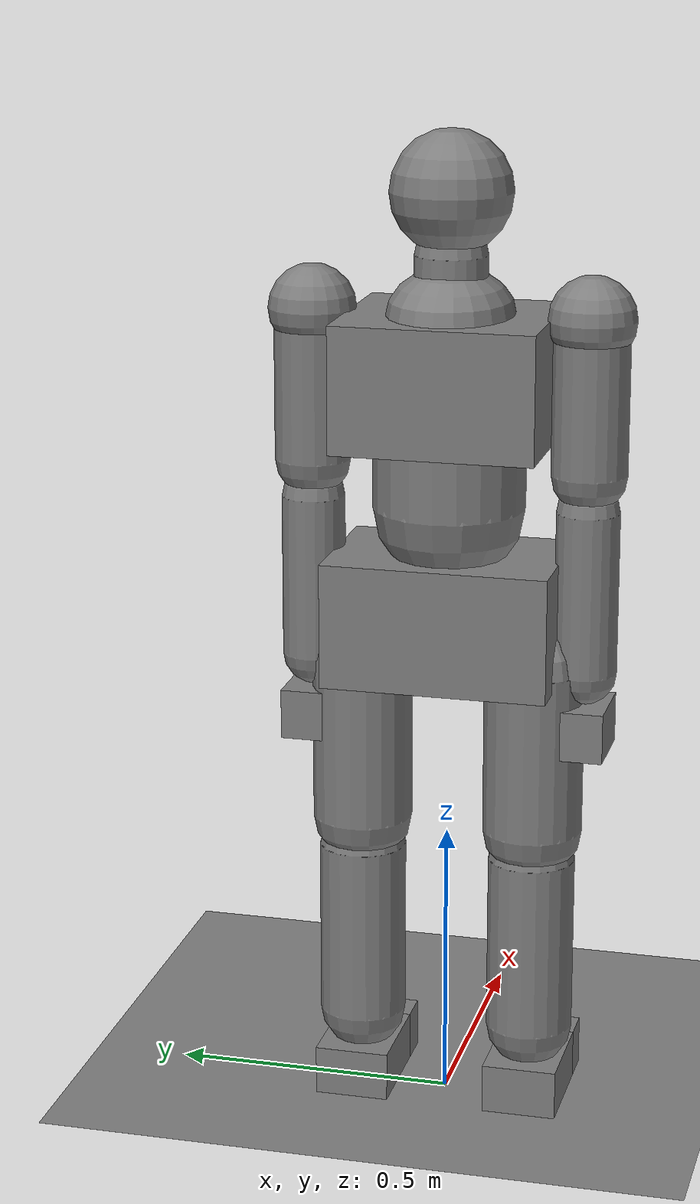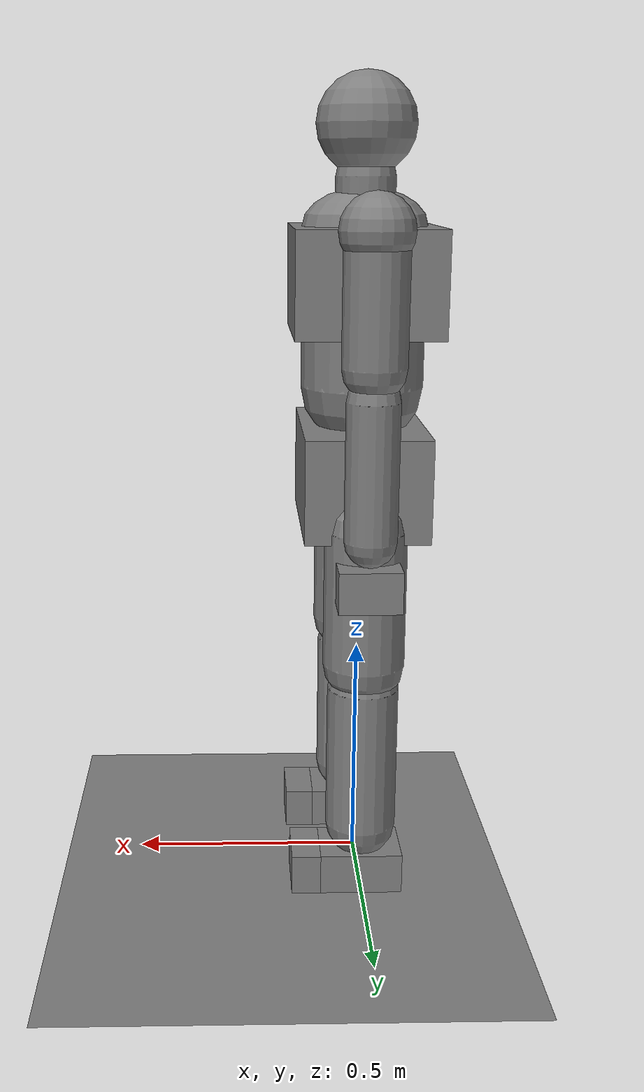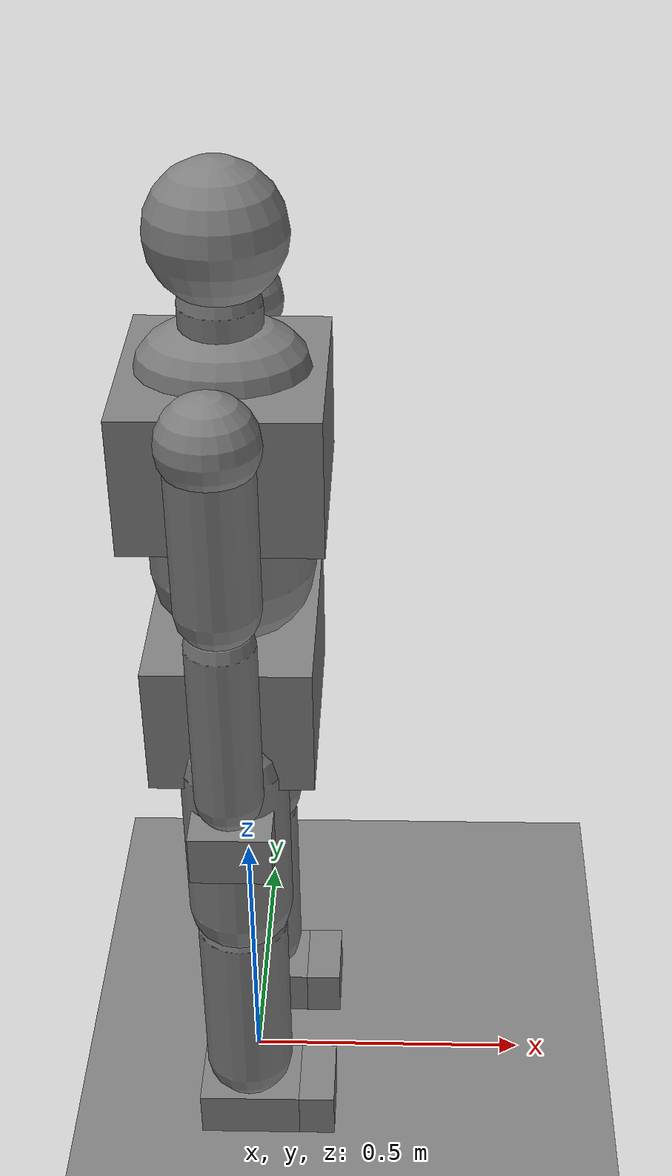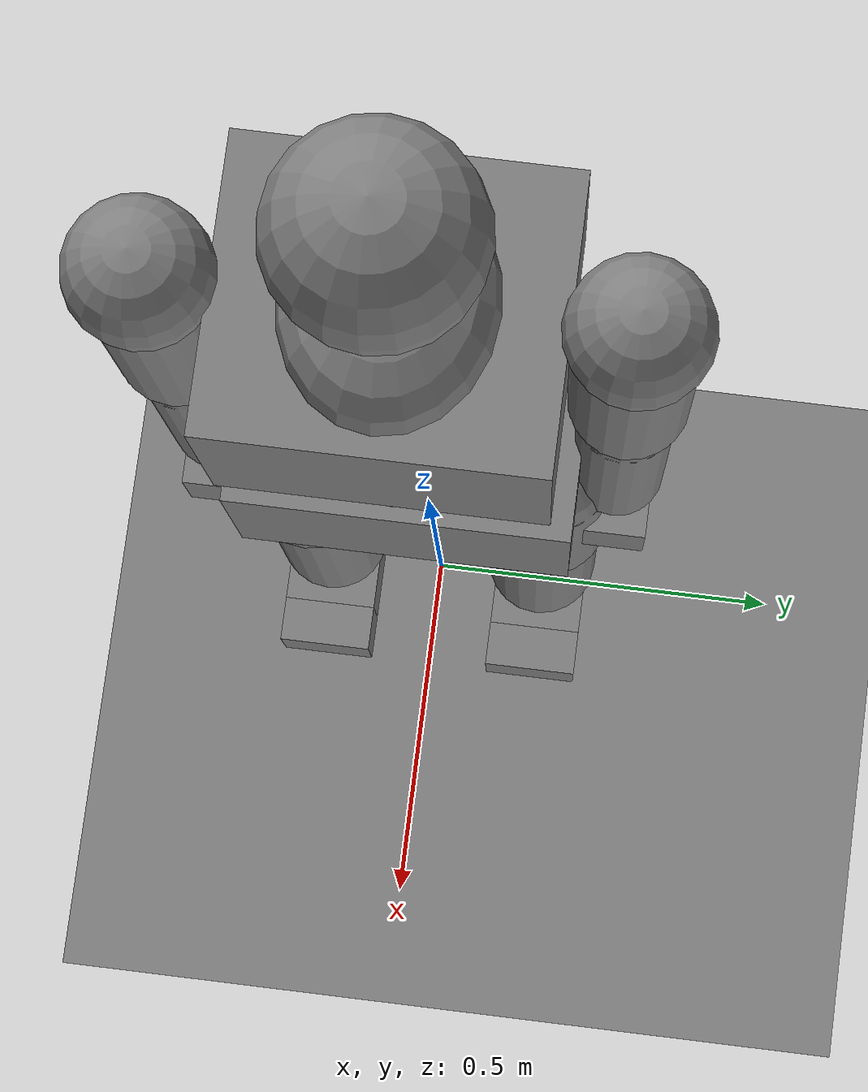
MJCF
<mujoco model="p4f_dummy">
  <compiler angle="radian" autolimits="true"/>
  <option timestep="0.004167" integrator="implicitfast"/>
  <worldbody>
    <geom name="floor" type="plane" size="60 60 0.1" pos="0 0 0"/>
      <body name="Pelvis" pos="0.000003 -0.000000 0.906287">
        <freejoint name="root"/>
        <geom name="g_Pelvis" type="box" size="0.1326 0.1989 0.1105" mass="12.1588"/>
        <body name="Spine" pos="-0.000024 0.000000 0.198952">
          <joint name="Spine_rx" type="hinge" axis="0 -1 0" pos="0.000020 -0.000000 -0.110346" range="-0.4000 1.0000" limited="true" armature="0.0200" stiffness="10.000" damping="0.500"/>
          <joint name="Spine_ry" type="hinge" axis="0 0 1" pos="0.000020 -0.000000 -0.110346" range="-0.5000 0.5000" limited="true" armature="0.0200" stiffness="10.000" damping="0.500"/>
          <joint name="Spine_rz" type="hinge" axis="-1 0 0" pos="0.000020 -0.000000 -0.110346" range="-0.5000 0.5000" limited="true" armature="0.0200" stiffness="10.000" damping="0.500"/>
          <geom name="g_Spine" type="capsule" size="0.1326 0.0579" pos="0 0 0.0524" mass="6.9479"/>
          <body name="Chest" pos="0.000063 -0.000000 0.221140">
            <joint name="Chest_rx" type="hinge" axis="0 -1 0" pos="-0.000042 0.000000 -0.143505" range="-0.5000 0.5000" limited="true" armature="0.0200" stiffness="10.000" damping="0.500"/>
            <joint name="Chest_ry" type="hinge" axis="0 0 1" pos="-0.000042 0.000000 -0.143505" range="-0.5000 0.5000" limited="true" armature="0.0200" stiffness="10.000" damping="0.500"/>
            <joint name="Chest_rz" type="hinge" axis="-1 0 0" pos="-0.000042 0.000000 -0.143505" range="-0.5000 0.5000" limited="true" armature="0.0200" stiffness="10.000" damping="0.500"/>
            <geom name="g_Yoke" type="ellipsoid" size="0.1331 0.1096 0.0796" pos="0 0 0.1106" mass="1.2"/>
            <geom name="g_Chest" type="box" size="0.1547 0.1768 0.1106" mass="11.6958"/>
            <geom name="g_Neck" type="capsule" size="0.0637 0.0504" pos="0 0 0.1610" mass="1.0000"/>
            <geom name="g_Deltoid_L" type="sphere" size="0.0763" pos="0 0.2432 0.1106" mass="0.35"/>
            <geom name="g_Deltoid_R" type="sphere" size="0.0763" pos="0 -0.2432 0.1106" mass="0.35"/>
            <body name="Head" pos="0.000005 -0.000000 0.317516">
              <joint name="Head_rx" type="hinge" axis="0 -1 0" pos="-0.000048 0.000000 -0.154557" range="-0.6000 0.6981" limited="true" stiffness="5.000" damping="0.600" solreflimit="0.008 1" solimplimit="0.95 0.999 0.001 0.5 2"/>
              <joint name="Head_ry" type="hinge" axis="0 0 1" pos="-0.000048 0.000000 -0.154557" range="-1.0000 1.0000" limited="true" stiffness="5.000" damping="0.600" solreflimit="0.008 1" solimplimit="0.95 0.999 0.001 0.5 2"/>
              <joint name="Head_rz" type="hinge" axis="-1 0 0" pos="-0.000048 0.000000 -0.154557" range="-0.7854 0.7854" limited="true" stiffness="5.000" damping="0.600" solreflimit="0.008 1" solimplimit="0.95 0.999 0.001 0.5 2"/>
              <geom name="g_Head" type="sphere" size="0.1061" mass="4.3424"/>
            </body>
            <body name="UpperArm_L" pos="-0.000386 -0.243157 -0.044376">
              <joint name="UpperArm_L_rx" type="hinge" axis="0 -1 0" pos="0.000344 -0.000000 0.154990" range="-1.0000 3.0000" limited="true" armature="0.0200" stiffness="4.500" damping="0.225"/>
              <joint name="UpperArm_L_ry" type="hinge" axis="0 0 1" pos="0.000344 -0.000000 0.154990" range="-1.5000 1.5000" limited="true" armature="0.0200" stiffness="4.500" damping="0.225"/>
              <joint name="UpperArm_L_rz" type="hinge" axis="-1 0 0" pos="0.000344 -0.000000 0.154990" range="-0.5000 2.5000" limited="true" armature="0.0200" stiffness="4.500" damping="0.225" springref="0.1396"/>
              <geom name="g_UpperArm_L" type="capsule" size="0.0663 0.1328" pos="0 0 0.0222" mass="2.1712"/>
              <body name="Forearm_L" pos="0.000380 -0.000038 -0.353675">
                <joint name="Forearm_L_rx" type="hinge" axis="0 -1 0" pos="-0.000037 -0.000044 0.177087" range="-0.1000 2.6000" limited="true" armature="0.0200" stiffness="3.000" damping="0.150"/>
                <geom name="g_Forearm_L" type="capsule" size="0.0553 0.1438" pos="0 0 0.0333" mass="1.5633"/>
                <body name="Hand_L" pos="0.000790 -0.000064 -0.210000">
                  <joint name="Hand_L_rx" type="hinge" axis="0 -1 0" pos="-0.000827 0.000020 0.066552" range="-1.0000 1.0000" limited="true" armature="0.0200" stiffness="1.930" damping="0.193"/>
                  <joint name="Hand_L_ry" type="hinge" axis="0 0 1" pos="-0.000827 0.000020 0.066552" range="-0.5000 0.5000" limited="true" armature="0.0200" stiffness="1.930" damping="0.193"/>
                  <joint name="Hand_L_rz" type="hinge" axis="-1 0 0" pos="-0.000827 0.000020 0.066552" range="-0.5000 0.5000" limited="true" armature="0.0200" stiffness="1.930" damping="0.193"/>
                  <geom name="g_Hand_L" type="box" size="0.0663 0.0442 0.0442" mass="0.4342"/>
                </body>
              </body>
            </body>
            <body name="UpperArm_R" pos="-0.000386 0.243157 -0.044376">
              <joint name="UpperArm_R_rx" type="hinge" axis="0 -1 0" pos="0.000344 -0.000000 0.154990" range="-1.0000 3.0000" limited="true" armature="0.0200" stiffness="4.500" damping="0.225"/>
              <joint name="UpperArm_R_ry" type="hinge" axis="0 0 1" pos="0.000344 -0.000000 0.154990" range="-1.5000 1.5000" limited="true" armature="0.0200" stiffness="4.500" damping="0.225"/>
              <joint name="UpperArm_R_rz" type="hinge" axis="-1 0 0" pos="0.000344 -0.000000 0.154990" range="-2.5000 0.5000" limited="true" armature="0.0200" stiffness="4.500" damping="0.225" springref="-0.1396"/>
              <geom name="g_UpperArm_R" type="capsule" size="0.0663 0.1328" pos="0 0 0.0222" mass="2.1712"/>
              <body name="Forearm_R" pos="0.000380 0.000038 -0.353675">
                <joint name="Forearm_R_rx" type="hinge" axis="0 -1 0" pos="-0.000037 0.000044 0.177087" range="-0.1000 2.6000" limited="true" armature="0.0200" stiffness="3.000" damping="0.150"/>
                <geom name="g_Forearm_R" type="capsule" size="0.0553 0.1438" pos="0 0 0.0333" mass="1.5633"/>
                <body name="Hand_R" pos="0.000790 0.000064 -0.210000">
                  <joint name="Hand_R_rx" type="hinge" axis="0 -1 0" pos="-0.000827 -0.000020 0.066552" range="-1.0000 1.0000" limited="true" armature="0.0200" stiffness="1.930" damping="0.193"/>
                  <joint name="Hand_R_ry" type="hinge" axis="0 0 1" pos="-0.000827 -0.000020 0.066552" range="-0.5000 0.5000" limited="true" armature="0.0200" stiffness="1.930" damping="0.193"/>
                  <joint name="Hand_R_rz" type="hinge" axis="-1 0 0" pos="-0.000827 -0.000020 0.066552" range="-0.5000 0.5000" limited="true" armature="0.0200" stiffness="1.930" damping="0.193"/>
                  <geom name="g_Hand_R" type="box" size="0.0663 0.0442 0.0442" mass="0.4342"/>
                </body>
              </body>
            </body>
          </body>
        </body>
        <body name="Thigh_L" pos="-0.000005 -0.154736 -0.265263">
          <joint name="Thigh_L_rx" type="hinge" axis="0 -1 0" pos="0.000002 -0.000000 0.177024" range="-0.5000 2.1000" limited="true" armature="0.0200" stiffness="10.000" damping="0.500"/>
          <joint name="Thigh_L_ry" type="hinge" axis="0 0 1" pos="0.000002 -0.000000 0.177024" range="-0.5000 0.5000" limited="true" armature="0.0200" stiffness="10.000" damping="0.500"/>
          <joint name="Thigh_L_rz" type="hinge" axis="-1 0 0" pos="0.000002 -0.000000 0.177024" range="-0.2000 0.8000" limited="true" armature="0.0200" stiffness="10.000" damping="0.500"/>
          <geom name="g_Thigh_L" type="capsule" size="0.0884 0.1493" pos="0 0 0.0277" mass="6.5136"/>
          <body name="Shin_L" pos="-0.000006 0.000000 -0.364736">
            <joint name="Shin_L_rx" type="hinge" axis="0 -1 0" pos="0.000008 0.000000 0.188077" range="-2.6000 0.1000" limited="true" armature="0.0200" stiffness="12.500" damping="0.625"/>
            <geom name="g_Shin_L" type="capsule" size="0.0774 0.1604" pos="0 0 0.0277" mass="3.9082"/>
            <body name="Foot_L" pos="0.033180 0.000000 -0.232078">
              <joint name="Foot_L_rx" type="hinge" axis="0 -1 0" pos="-0.033172 -0.000000 0.044366" range="-0.8000 0.6000" limited="true" armature="0.0200" stiffness="7.500" damping="0.375"/>
              <joint name="Foot_L_ry" type="hinge" axis="0 0 1" pos="-0.033172 -0.000000 0.044366" range="-0.2000 0.2000" limited="true" armature="0.0200" stiffness="7.500" damping="0.375"/>
              <joint name="Foot_L_rz" type="hinge" axis="-1 0 0" pos="-0.033172 -0.000000 0.044366" range="-0.2000 0.2000" limited="true" armature="0.0200" stiffness="7.500" damping="0.375"/>
              <geom name="g_Foot_L" type="box" size="0.0897 0.0663 0.0442" pos="-0.0318 0 0" mass="1.0000"/>
              <body name="Toe_L" pos="0.0579 0 0">
                <joint name="Toe_L_rx" type="hinge" axis="0 -1 0" pos="0 0 0" range="-0.5000 1.0000" limited="true" armature="0.0200" stiffness="1.500" damping="0.075"/>
                <geom name="g_Toe_L" type="box" size="0.0318 0.0663 0.0442" pos="0.0318 0 0" mass="0.2000"/>
              </body>
            </body>
          </body>
        </body>
        <body name="Thigh_R" pos="-0.000005 0.154737 -0.265263">
          <joint name="Thigh_R_rx" type="hinge" axis="0 -1 0" pos="0.000002 0.000000 0.177024" range="-0.5000 2.1000" limited="true" armature="0.0200" stiffness="10.000" damping="0.500"/>
          <joint name="Thigh_R_ry" type="hinge" axis="0 0 1" pos="0.000002 0.000000 0.177024" range="-0.5000 0.5000" limited="true" armature="0.0200" stiffness="10.000" damping="0.500"/>
          <joint name="Thigh_R_rz" type="hinge" axis="-1 0 0" pos="0.000002 0.000000 0.177024" range="-0.8000 0.2000" limited="true" armature="0.0200" stiffness="10.000" damping="0.500"/>
          <geom name="g_Thigh_R" type="capsule" size="0.0884 0.1493" pos="0 0 0.0277" mass="6.5136"/>
          <body name="Shin_R" pos="-0.000006 0.000000 -0.364736">
            <joint name="Shin_R_rx" type="hinge" axis="0 -1 0" pos="0.000008 -0.000000 0.188077" range="-2.6000 0.1000" limited="true" armature="0.0200" stiffness="12.500" damping="0.625"/>
            <geom name="g_Shin_R" type="capsule" size="0.0774 0.1604" pos="0 0 0.0277" mass="3.9082"/>
            <body name="Foot_R" pos="0.033180 0.000000 -0.232078">
              <joint name="Foot_R_rx" type="hinge" axis="0 -1 0" pos="-0.033172 -0.000000 0.044366" range="-0.8000 0.6000" limited="true" armature="0.0200" stiffness="7.500" damping="0.375"/>
              <joint name="Foot_R_ry" type="hinge" axis="0 0 1" pos="-0.033172 -0.000000 0.044366" range="-0.2000 0.2000" limited="true" armature="0.0200" stiffness="7.500" damping="0.375"/>
              <joint name="Foot_R_rz" type="hinge" axis="-1 0 0" pos="-0.033172 -0.000000 0.044366" range="-0.2000 0.2000" limited="true" armature="0.0200" stiffness="7.500" damping="0.375"/>
              <geom name="g_Foot_R" type="box" size="0.0897 0.0663 0.0442" pos="-0.0318 0 0" mass="1.0000"/>
              <body name="Toe_R" pos="0.0579 0 0">
                <joint name="Toe_R_rx" type="hinge" axis="0 -1 0" pos="0 0 0" range="-0.5000 1.0000" limited="true" armature="0.0200" stiffness="1.500" damping="0.075"/>
                <geom name="g_Toe_R" type="box" size="0.0318 0.0663 0.0442" pos="0.0318 0 0" mass="0.2000"/>
              </body>
            </body>
          </body>
        </body>
      </body>
  </worldbody>
  <actuator>
    <motor name="Spine_rx" joint="Spine_rx" gear="1" ctrllimited="true" ctrlrange="-200.0 200.0" forcerange="-200.0 200.0"/>
    <motor name="Spine_ry" joint="Spine_ry" gear="1" ctrllimited="true" ctrlrange="-200.0 200.0" forcerange="-200.0 200.0"/>
    <motor name="Spine_rz" joint="Spine_rz" gear="1" ctrllimited="true" ctrlrange="-200.0 200.0" forcerange="-200.0 200.0"/>
    <motor name="Chest_rx" joint="Chest_rx" gear="1" ctrllimited="true" ctrlrange="-200.0 200.0" forcerange="-200.0 200.0"/>
    <motor name="Chest_ry" joint="Chest_ry" gear="1" ctrllimited="true" ctrlrange="-200.0 200.0" forcerange="-200.0 200.0"/>
    <motor name="Chest_rz" joint="Chest_rz" gear="1" ctrllimited="true" ctrlrange="-200.0 200.0" forcerange="-200.0 200.0"/>
    <position name="Head_rx" joint="Head_rx" kp="15.0" kv="1.500" forcerange="-30.0 30.0"/>
    <position name="Head_ry" joint="Head_ry" kp="15.0" kv="1.500" forcerange="-30.0 30.0"/>
    <position name="Head_rz" joint="Head_rz" kp="15.0" kv="1.500" forcerange="-30.0 30.0"/>
    <motor name="UpperArm_L_rx" joint="UpperArm_L_rx" gear="1" ctrllimited="true" ctrlrange="-90.0 90.0" forcerange="-90.0 90.0"/>
    <motor name="UpperArm_L_ry" joint="UpperArm_L_ry" gear="1" ctrllimited="true" ctrlrange="-90.0 90.0" forcerange="-90.0 90.0"/>
    <motor name="UpperArm_L_rz" joint="UpperArm_L_rz" gear="1" ctrllimited="true" ctrlrange="-90.0 90.0" forcerange="-90.0 90.0"/>
    <motor name="Forearm_L_rx" joint="Forearm_L_rx" gear="1" ctrllimited="true" ctrlrange="-60.0 60.0" forcerange="-60.0 60.0"/>
    <motor name="UpperArm_R_rx" joint="UpperArm_R_rx" gear="1" ctrllimited="true" ctrlrange="-90.0 90.0" forcerange="-90.0 90.0"/>
    <motor name="UpperArm_R_ry" joint="UpperArm_R_ry" gear="1" ctrllimited="true" ctrlrange="-90.0 90.0" forcerange="-90.0 90.0"/>
    <motor name="UpperArm_R_rz" joint="UpperArm_R_rz" gear="1" ctrllimited="true" ctrlrange="-90.0 90.0" forcerange="-90.0 90.0"/>
    <motor name="Forearm_R_rx" joint="Forearm_R_rx" gear="1" ctrllimited="true" ctrlrange="-60.0 60.0" forcerange="-60.0 60.0"/>
    <motor name="Thigh_L_rx" joint="Thigh_L_rx" gear="1" ctrllimited="true" ctrlrange="-200.0 200.0" forcerange="-200.0 200.0"/>
    <motor name="Thigh_L_ry" joint="Thigh_L_ry" gear="1" ctrllimited="true" ctrlrange="-200.0 200.0" forcerange="-200.0 200.0"/>
    <motor name="Thigh_L_rz" joint="Thigh_L_rz" gear="1" ctrllimited="true" ctrlrange="-200.0 200.0" forcerange="-200.0 200.0"/>
    <motor name="Shin_L_rx" joint="Shin_L_rx" gear="1" ctrllimited="true" ctrlrange="-250.0 250.0" forcerange="-250.0 250.0"/>
    <motor name="Foot_L_rx" joint="Foot_L_rx" gear="1" ctrllimited="true" ctrlrange="-150.0 150.0" forcerange="-150.0 150.0"/>
    <motor name="Foot_L_ry" joint="Foot_L_ry" gear="1" ctrllimited="true" ctrlrange="-150.0 150.0" forcerange="-150.0 150.0"/>
    <motor name="Foot_L_rz" joint="Foot_L_rz" gear="1" ctrllimited="true" ctrlrange="-150.0 150.0" forcerange="-150.0 150.0"/>
    <motor name="Toe_L_rx" joint="Toe_L_rx" gear="1" ctrllimited="true" ctrlrange="-30.0 30.0" forcerange="-30.0 30.0"/>
    <motor name="Thigh_R_rx" joint="Thigh_R_rx" gear="1" ctrllimited="true" ctrlrange="-200.0 200.0" forcerange="-200.0 200.0"/>
    <motor name="Thigh_R_ry" joint="Thigh_R_ry" gear="1" ctrllimited="true" ctrlrange="-200.0 200.0" forcerange="-200.0 200.0"/>
    <motor name="Thigh_R_rz" joint="Thigh_R_rz" gear="1" ctrllimited="true" ctrlrange="-200.0 200.0" forcerange="-200.0 200.0"/>
    <motor name="Shin_R_rx" joint="Shin_R_rx" gear="1" ctrllimited="true" ctrlrange="-250.0 250.0" forcerange="-250.0 250.0"/>
    <motor name="Foot_R_rx" joint="Foot_R_rx" gear="1" ctrllimited="true" ctrlrange="-150.0 150.0" forcerange="-150.0 150.0"/>
    <motor name="Foot_R_ry" joint="Foot_R_ry" gear="1" ctrllimited="true" ctrlrange="-150.0 150.0" forcerange="-150.0 150.0"/>
    <motor name="Foot_R_rz" joint="Foot_R_rz" gear="1" ctrllimited="true" ctrlrange="-150.0 150.0" forcerange="-150.0 150.0"/>
    <motor name="Toe_R_rx" joint="Toe_R_rx" gear="1" ctrllimited="true" ctrlrange="-30.0 30.0" forcerange="-30.0 30.0"/>
  </actuator>
  <keyframe>
    <key name="rest" qpos="0.000003 -0.000000 0.906287 1.000000 0.000000 0.000000 0.000000 0.000000 0.000000 0.000000 0.000000 0.000000 0.000000 0.000000 0.000000 0.000000 0.000000 0.000000 0.139600 0.000000 0.000000 0.000000 0.000000 0.000000 0.000000 -0.139600 0.000000 0.000000 0.000000 0.000000 0.000000 0.000000 0.000000 0.000000 0.000000 0.000000 0.000000 0.000000 0.000000 0.000000 0.000000 0.000000 0.000000 0.000000 0.000000 0.000000"/>
  </keyframe>
</mujoco>
